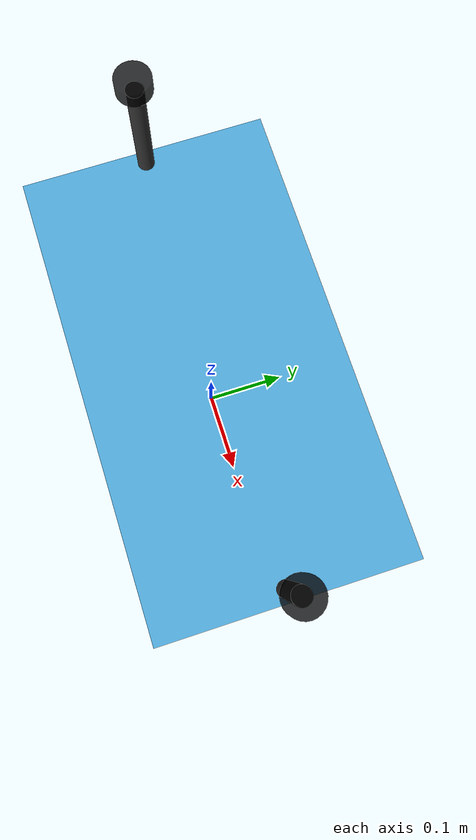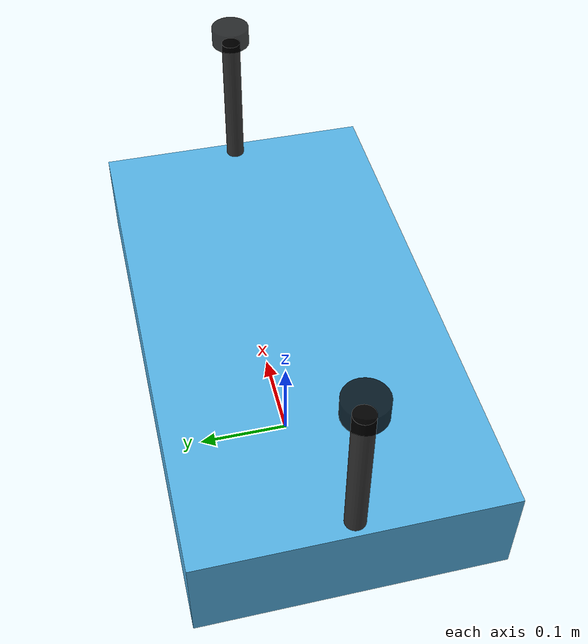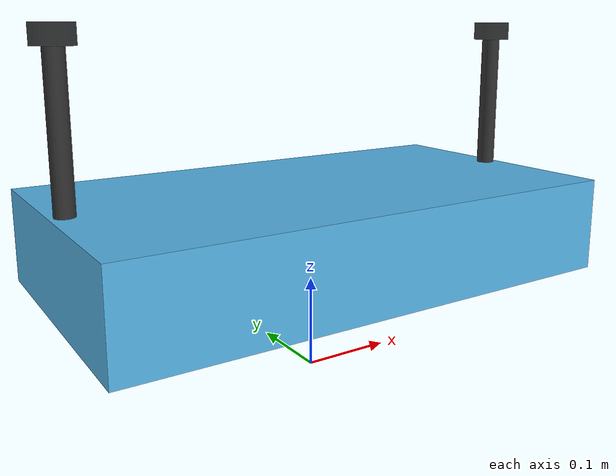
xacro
<?xml version="1.0"?>
<robot name="fishbot" xmlns:xacro="http://www.ros.org/wiki/xacro">
    <!-- Include all component definitions -->
    <xacro:include filename="$(find fishbot_description)/urdf/fishbot/base.urdf.xacro" />
    <xacro:include filename="$(find fishbot_description)/urdf/fishbot/sensor/laser_front.urdf.xacro" />
    <xacro:include filename="$(find fishbot_description)/urdf/fishbot/sensor/laser_rear.urdf.xacro" />
    <xacro:include filename="$(find fishbot_description)/urdf/fishbot/sensor/imu.urdf.xacro" />

    <!-- Add the components to the robot -->
    <xacro:laser_front_xacro />
    <xacro:laser_rear_xacro />
    <xacro:imu_xacro xyz="0 0 0" />

</robot>

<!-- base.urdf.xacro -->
<robot xmlns:xacro="http://www.ros.org/wiki/xacro">
    <xacro:property name="body_mass" value="20.0" /> <!-- 减轻车身重量 -->
    <xacro:property name="body_width" value="0.3" />
    <xacro:property name="body_length" value="0.10" />
    <xacro:property name="body_depth" value="0.55" /> <!-- 将原来的0.75减少到0.55 -->

    <!-- BASE -->
    <link name="base_footprint">
            <origin xyz="0 0 0" rpy="0 0 0" />
    </link>

    <link name="base_link">
        <inertial>
            <origin xyz="0.0374140021041951 -0.000373005187591258 -0.0771282894414029" rpy="0 0 0" />
            <mass value="20.0" /> <!-- 相应减少质量 -->
            <inertia ixx="${body_mass/12 * (body_width*body_width + body_length*body_length)}"
                ixy="0" ixz="0"
                iyy="${body_mass/12 * (body_length*body_length + body_depth*body_depth)}" iyz="0"
                izz="${body_mass/12 * (body_width*body_width + body_depth*body_depth)}" />
        </inertial>
        <visual>
            <origin xyz="0 0 0" rpy="0 0 0" />
            <geometry>
                <box size="0.55 0.3 0.10" /> <!-- 将长度从0.75修改为0.55 -->
            </geometry>
        </visual>
        <collision>
            <origin xyz="0.07 0 -0.05" rpy="0 0 0" />
            <geometry>
                <box size="0.55 0.3 0.10" /> <!-- 将长度从0.75修改为0.55 -->
            </geometry>
        </collision>
    </link>

    <joint name="base_joint" type="fixed">
        <parent link="base_footprint" />
        <child link="base_link" />
        <origin xyz="0.0 0.0 0.1555" rpy="0 0 0" /> <!-- 使用原来chassis_joint的高度 -->
    </joint>

</robot>

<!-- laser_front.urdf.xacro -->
<robot xmlns:xacro="http://www.ros.org/wiki/xacro">
   <xacro:include filename="$(find fishbot_description)/urdf/fishbot/common_inertia.xacro" />
    <xacro:macro name="laser_front_xacro">
        <gazebo reference="laser_front">
            <material>Gazebo/Black</material>
        </gazebo>

        <!-- 添加雷达支撑杆 -->
        <link name="laser_front_pole">
            <visual>
                <origin xyz="0 0 0" rpy="0 0 0" />
                <geometry>
                    <cylinder length="0.15" radius="0.01" />
                </geometry>
                <material name="dark_grey">
                    <color rgba="0.2 0.2 0.2 1.0" />
                </material>
            </visual>
            <collision>
                <origin xyz="0 0 0" rpy="0 0 0" />
                <geometry>
                    <cylinder length="0.15" radius="0.01" />
                </geometry>
            </collision>
            <xacro:cylinder_inertia m="0.05" r="0.01" h="0.15" />
        </link>

        <joint name="laser_front_pole_joint" type="fixed">
            <parent link="base_link" />
            <child link="laser_front_pole" />
            <origin xyz="0.26 0 0.125" rpy="0 0 0" />
        </joint>

        <!-- 雷达本体 -->
        <link name="laser_front">
            <visual>
                <origin xyz="0 0 0" rpy="0 0 0" />
                <geometry>
                    <cylinder length="0.02" radius="0.02" />
                </geometry>
                <material name="black">
                    <color rgba="0.0 0.0 0.0 0.8" />
                </material>
            </visual>
            <collision>
                <origin xyz="0 0 0" rpy="0 0 0" />
                <geometry>
                    <cylinder length="0.02" radius="0.02" />
                </geometry>
            </collision>
            <xacro:cylinder_inertia m="0.03" r="0.02" h="0.02" />
        </link>

        <!-- 修改雷达关节连接到支撑杆上 -->
        <joint name="laser_front_joint" type="fixed">
            <parent link="laser_front_pole" />
            <child link="laser_front" />
            <origin xyz="0 0 0.085" rpy="0 0 0" />
        </joint>

    </xacro:macro>

</robot>

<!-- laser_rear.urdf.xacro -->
<robot xmlns:xacro="http://www.ros.org/wiki/xacro">
   <xacro:include filename="$(find fishbot_description)/urdf/fishbot/common_inertia.xacro" />
    <xacro:macro name="laser_rear_xacro">
        <gazebo reference="laser_rear">
            <material>Gazebo/Black</material>
        </gazebo>

        <!-- 添加雷达支撑杆 -->
        <link name="laser_rear_pole">
            <visual>
                <origin xyz="0 0 0" rpy="0 0 0" />
                <geometry>
                    <cylinder length="0.15" radius="0.01" />
                </geometry>
                <material name="dark_grey">
                    <color rgba="0.2 0.2 0.2 1.0" />
                </material>
            </visual>
            <collision>
                <origin xyz="0 0 0" rpy="0 0 0" />
                <geometry>
                    <cylinder length="0.15" radius="0.01" />
                </geometry>
            </collision>
            <xacro:cylinder_inertia m="0.05" r="0.01" h="0.15" />
        </link>

        <joint name="laser_rear_pole_joint" type="fixed">
            <parent link="base_link" />
            <child link="laser_rear_pole" />
            <origin xyz="-0.26 0 0.125" rpy="0 0 0" /> <!-- 将x从-0.360改为-0.26 -->
        </joint>

        <!-- 雷达本体 -->
        <link name="laser_rear">
            <visual>
                <origin xyz="0 0 0" rpy="0 0 0" />
                <geometry>
                    <cylinder length="0.02" radius="0.02" />
                </geometry>
                <material name="black">
                    <color rgba="0.0 0.0 0.0 0.8" />
                </material>
            </visual>
            <collision>
                <origin xyz="0 0 0" rpy="0 0 0" />
                <geometry>
                    <cylinder length="0.02" radius="0.02" />
                </geometry>
            </collision>
            <xacro:cylinder_inertia m="0.03" r="0.02" h="0.02" />
        </link>

        <!-- 修改雷达关节连接到支撑杆上 -->
        <joint name="laser_rear_joint" type="fixed">
            <parent link="laser_rear_pole" />
            <child link="laser_rear" />
            <origin xyz="0 0 0.085" rpy="0 0 0" />
        </joint>

    </xacro:macro>

</robot>

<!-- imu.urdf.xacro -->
<robot xmlns:xacro="http://www.ros.org/wiki/xacro">
  <xacro:include filename="$(find fishbot_description)/urdf/fishbot/common_inertia.xacro" />

  <xacro:macro name="imu_xacro" params="xyz">
    <link name="imu_link">
      <visual>
        <origin xyz="0.0 0.0 0.0" rpy="0.0 0.0 0.0" />
        <geometry>
          <box size="0.02 0.02 0.02" />
        </geometry>
      </visual>
      <collision>
        <origin xyz="0.0 0.0 0.0" rpy="0.0 0.0 0.0" />
        <geometry>
          <box size="0.02 0.02 0.02" />
        </geometry>
      </collision>
      <material name="black">
        <color rgba="0.0 0.0 0.0 0.5"/>
      </material>
      <xacro:box_inertia m="0.05" w="0.02" h="0.02" d="0.02" />
    </link>

    <joint name="imu_joint" type="fixed">
      <parent link="base_link" />
      <child link="imu_link" />
      <origin xyz="${xyz}" rpy="0.0 0.0 0.0" />
    </joint>
  </xacro:macro>

</robot>
